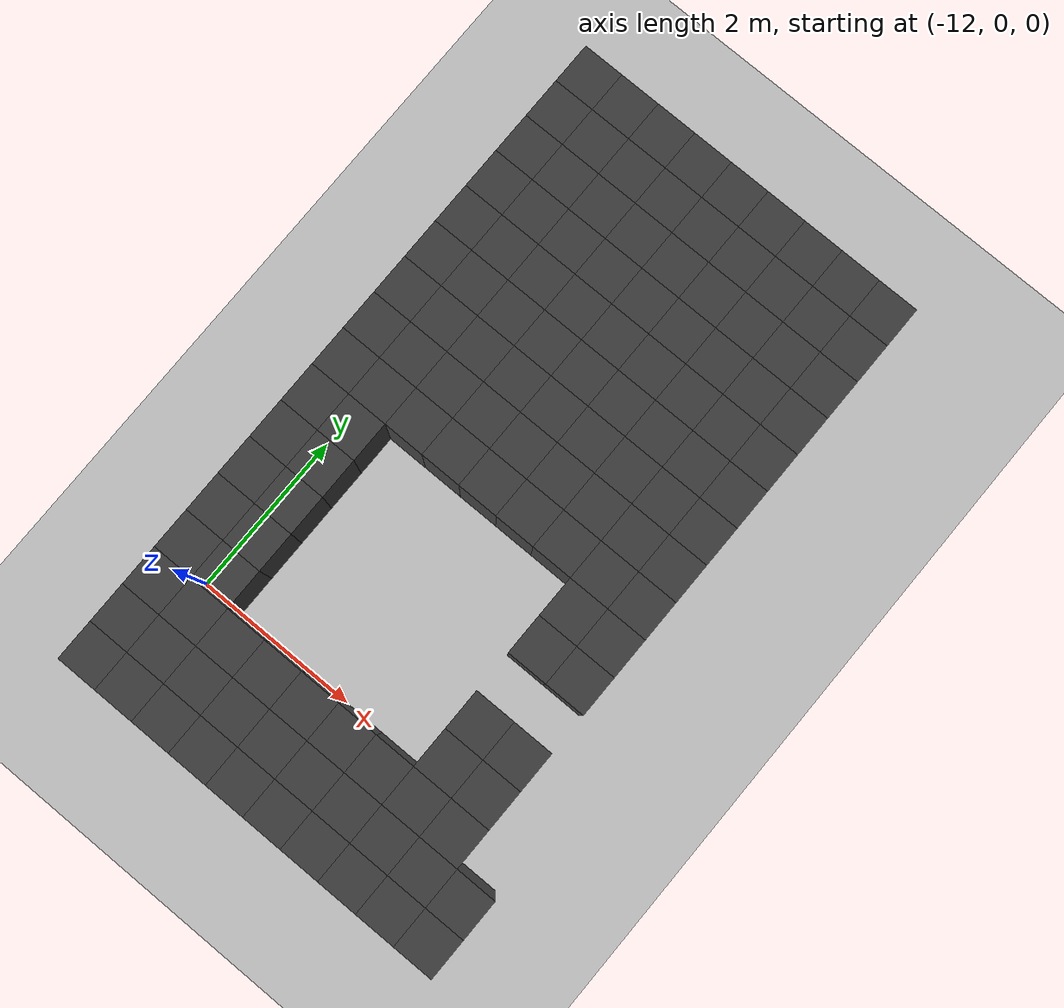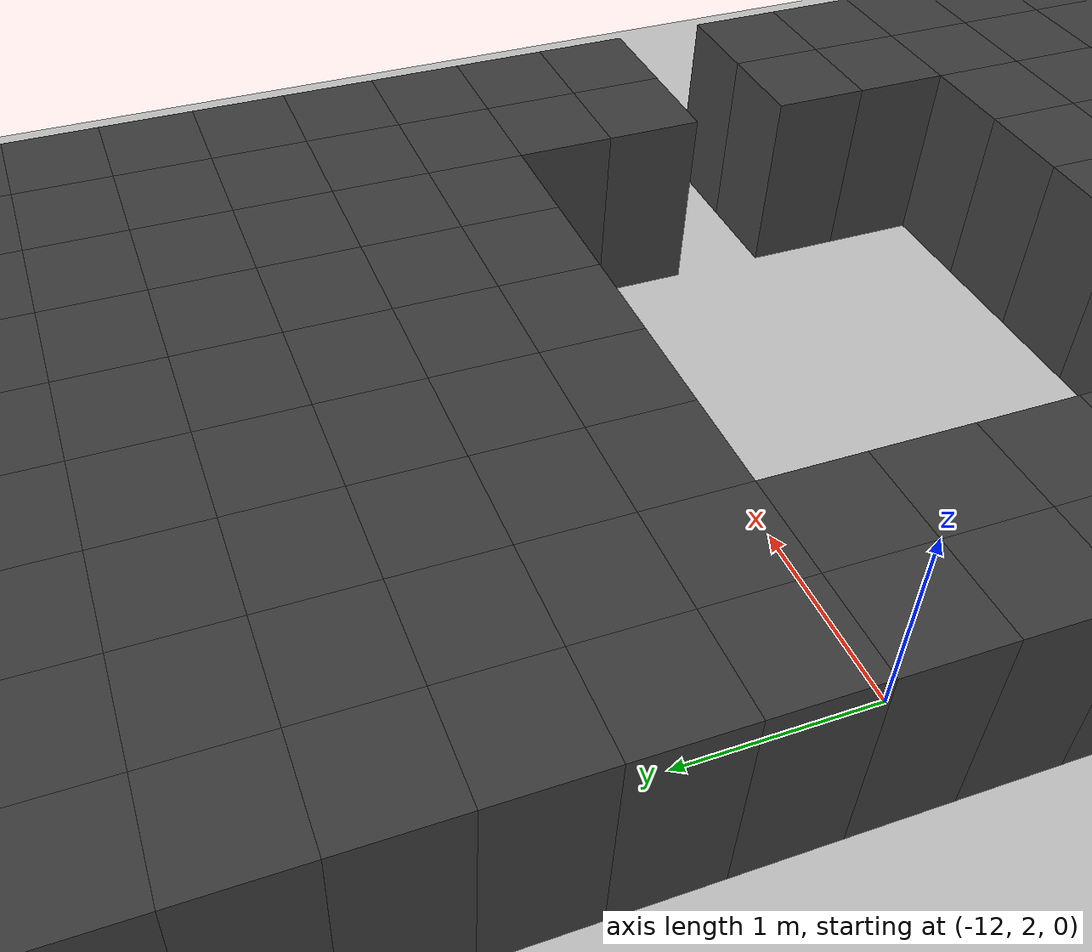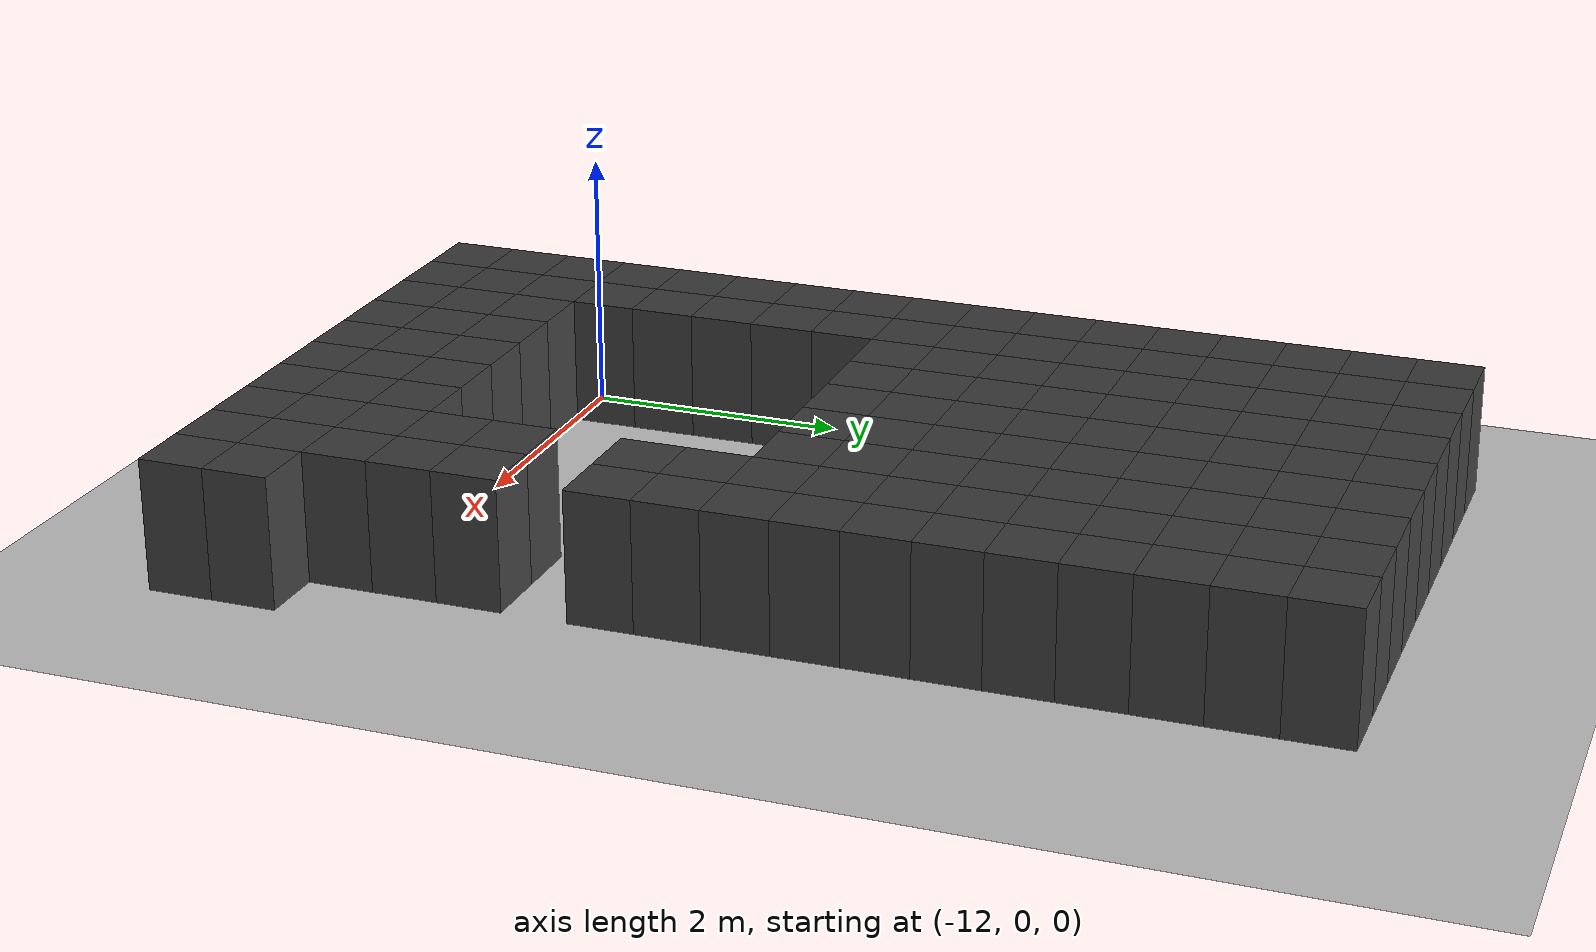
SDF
<sdf version="1.7">
 <world name="map_14980">
  <model name="ground_plane">
   <static>true</static>
   <link name="link">
    <collision name="collision">
     <geometry><plane><normal>0 0 1</normal><size>200 200</size></plane></geometry>
    </collision>
    <visual name="visual">
     <geometry><plane><normal>0 0 1</normal><size>200 200</size></plane></geometry>
     <material><ambient>0.8 0.8 0.8 1</ambient><diffuse>0.8 0.8 0.8 1</diffuse></material>
    </visual>
   </link>
  </model>
  <model name="maze_environment">
   <static>true</static>
   <link name="wall_420">
    <pose>-12.250 6.750 0.500 0 0 0</pose>
    <collision name="col"><geometry><box><size>0.5 0.5 1.0</size></box></geometry></collision>
    <visual name="vis">
     <geometry><box><size>0.5 0.5 1.0</size></box></geometry>
     <material><ambient>0.15 0.15 0.15 1</ambient><diffuse>0.25 0.25 0.25 1</diffuse></material>
    </visual>
   </link>
   <link name="wall_421">
    <pose>-11.750 6.750 0.500 0 0 0</pose>
    <collision name="col"><geometry><box><size>0.5 0.5 1.0</size></box></geometry></collision>
    <visual name="vis">
     <geometry><box><size>0.5 0.5 1.0</size></box></geometry>
     <material><ambient>0.15 0.15 0.15 1</ambient><diffuse>0.25 0.25 0.25 1</diffuse></material>
    </visual>
   </link>
   <link name="wall_422">
    <pose>-11.250 6.750 0.500 0 0 0</pose>
    <collision name="col"><geometry><box><size>0.5 0.5 1.0</size></box></geometry></collision>
    <visual name="vis">
     <geometry><box><size>0.5 0.5 1.0</size></box></geometry>
     <material><ambient>0.15 0.15 0.15 1</ambient><diffuse>0.25 0.25 0.25 1</diffuse></material>
    </visual>
   </link>
   <link name="wall_423">
    <pose>-10.750 6.750 0.500 0 0 0</pose>
    <collision name="col"><geometry><box><size>0.5 0.5 1.0</size></box></geometry></collision>
    <visual name="vis">
     <geometry><box><size>0.5 0.5 1.0</size></box></geometry>
     <material><ambient>0.15 0.15 0.15 1</ambient><diffuse>0.25 0.25 0.25 1</diffuse></material>
    </visual>
   </link>
   <link name="wall_424">
    <pose>-10.250 6.750 0.500 0 0 0</pose>
    <collision name="col"><geometry><box><size>0.5 0.5 1.0</size></box></geometry></collision>
    <visual name="vis">
     <geometry><box><size>0.5 0.5 1.0</size></box></geometry>
     <material><ambient>0.15 0.15 0.15 1</ambient><diffuse>0.25 0.25 0.25 1</diffuse></material>
    </visual>
   </link>
   <link name="wall_425">
    <pose>-9.750 6.750 0.500 0 0 0</pose>
    <collision name="col"><geometry><box><size>0.5 0.5 1.0</size></box></geometry></collision>
    <visual name="vis">
     <geometry><box><size>0.5 0.5 1.0</size></box></geometry>
     <material><ambient>0.15 0.15 0.15 1</ambient><diffuse>0.25 0.25 0.25 1</diffuse></material>
    </visual>
   </link>
   <link name="wall_426">
    <pose>-9.250 6.750 0.500 0 0 0</pose>
    <collision name="col"><geometry><box><size>0.5 0.5 1.0</size></box></geometry></collision>
    <visual name="vis">
     <geometry><box><size>0.5 0.5 1.0</size></box></geometry>
     <material><ambient>0.15 0.15 0.15 1</ambient><diffuse>0.25 0.25 0.25 1</diffuse></material>
    </visual>
   </link>
   <link name="wall_427">
    <pose>-8.750 6.750 0.500 0 0 0</pose>
    <collision name="col"><geometry><box><size>0.5 0.5 1.0</size></box></geometry></collision>
    <visual name="vis">
     <geometry><box><size>0.5 0.5 1.0</size></box></geometry>
     <material><ambient>0.15 0.15 0.15 1</ambient><diffuse>0.25 0.25 0.25 1</diffuse></material>
    </visual>
   </link>
   <link name="wall_428">
    <pose>-8.250 6.750 0.500 0 0 0</pose>
    <collision name="col"><geometry><box><size>0.5 0.5 1.0</size></box></geometry></collision>
    <visual name="vis">
     <geometry><box><size>0.5 0.5 1.0</size></box></geometry>
     <material><ambient>0.15 0.15 0.15 1</ambient><diffuse>0.25 0.25 0.25 1</diffuse></material>
    </visual>
   </link>
   <link name="wall_460">
    <pose>-12.250 6.250 0.500 0 0 0</pose>
    <collision name="col"><geometry><box><size>0.5 0.5 1.0</size></box></geometry></collision>
    <visual name="vis">
     <geometry><box><size>0.5 0.5 1.0</size></box></geometry>
     <material><ambient>0.15 0.15 0.15 1</ambient><diffuse>0.25 0.25 0.25 1</diffuse></material>
    </visual>
   </link>
   <link name="wall_461">
    <pose>-11.750 6.250 0.500 0 0 0</pose>
    <collision name="col"><geometry><box><size>0.5 0.5 1.0</size></box></geometry></collision>
    <visual name="vis">
     <geometry><box><size>0.5 0.5 1.0</size></box></geometry>
     <material><ambient>0.15 0.15 0.15 1</ambient><diffuse>0.25 0.25 0.25 1</diffuse></material>
    </visual>
   </link>
   <link name="wall_462">
    <pose>-11.250 6.250 0.500 0 0 0</pose>
    <collision name="col"><geometry><box><size>0.5 0.5 1.0</size></box></geometry></collision>
    <visual name="vis">
     <geometry><box><size>0.5 0.5 1.0</size></box></geometry>
     <material><ambient>0.15 0.15 0.15 1</ambient><diffuse>0.25 0.25 0.25 1</diffuse></material>
    </visual>
   </link>
   <link name="wall_463">
    <pose>-10.750 6.250 0.500 0 0 0</pose>
    <collision name="col"><geometry><box><size>0.5 0.5 1.0</size></box></geometry></collision>
    <visual name="vis">
     <geometry><box><size>0.5 0.5 1.0</size></box></geometry>
     <material><ambient>0.15 0.15 0.15 1</ambient><diffuse>0.25 0.25 0.25 1</diffuse></material>
    </visual>
   </link>
   <link name="wall_464">
    <pose>-10.250 6.250 0.500 0 0 0</pose>
    <collision name="col"><geometry><box><size>0.5 0.5 1.0</size></box></geometry></collision>
    <visual name="vis">
     <geometry><box><size>0.5 0.5 1.0</size></box></geometry>
     <material><ambient>0.15 0.15 0.15 1</ambient><diffuse>0.25 0.25 0.25 1</diffuse></material>
    </visual>
   </link>
   <link name="wall_465">
    <pose>-9.750 6.250 0.500 0 0 0</pose>
    <collision name="col"><geometry><box><size>0.5 0.5 1.0</size></box></geometry></collision>
    <visual name="vis">
     <geometry><box><size>0.5 0.5 1.0</size></box></geometry>
     <material><ambient>0.15 0.15 0.15 1</ambient><diffuse>0.25 0.25 0.25 1</diffuse></material>
    </visual>
   </link>
   <link name="wall_466">
    <pose>-9.250 6.250 0.500 0 0 0</pose>
    <collision name="col"><geometry><box><size>0.5 0.5 1.0</size></box></geometry></collision>
    <visual name="vis">
     <geometry><box><size>0.5 0.5 1.0</size></box></geometry>
     <material><ambient>0.15 0.15 0.15 1</ambient><diffuse>0.25 0.25 0.25 1</diffuse></material>
    </visual>
   </link>
   <link name="wall_467">
    <pose>-8.750 6.250 0.500 0 0 0</pose>
    <collision name="col"><geometry><box><size>0.5 0.5 1.0</size></box></geometry></collision>
    <visual name="vis">
     <geometry><box><size>0.5 0.5 1.0</size></box></geometry>
     <material><ambient>0.15 0.15 0.15 1</ambient><diffuse>0.25 0.25 0.25 1</diffuse></material>
    </visual>
   </link>
   <link name="wall_468">
    <pose>-8.250 6.250 0.500 0 0 0</pose>
    <collision name="col"><geometry><box><size>0.5 0.5 1.0</size></box></geometry></collision>
    <visual name="vis">
     <geometry><box><size>0.5 0.5 1.0</size></box></geometry>
     <material><ambient>0.15 0.15 0.15 1</ambient><diffuse>0.25 0.25 0.25 1</diffuse></material>
    </visual>
   </link>
   <link name="wall_497">
    <pose>-12.250 5.750 0.500 0 0 0</pose>
    <collision name="col"><geometry><box><size>0.5 0.5 1.0</size></box></geometry></collision>
    <visual name="vis">
     <geometry><box><size>0.5 0.5 1.0</size></box></geometry>
     <material><ambient>0.15 0.15 0.15 1</ambient><diffuse>0.25 0.25 0.25 1</diffuse></material>
    </visual>
   </link>
   <link name="wall_498">
    <pose>-11.750 5.750 0.500 0 0 0</pose>
    <collision name="col"><geometry><box><size>0.5 0.5 1.0</size></box></geometry></collision>
    <visual name="vis">
     <geometry><box><size>0.5 0.5 1.0</size></box></geometry>
     <material><ambient>0.15 0.15 0.15 1</ambient><diffuse>0.25 0.25 0.25 1</diffuse></material>
    </visual>
   </link>
   <link name="wall_499">
    <pose>-11.250 5.750 0.500 0 0 0</pose>
    <collision name="col"><geometry><box><size>0.5 0.5 1.0</size></box></geometry></collision>
    <visual name="vis">
     <geometry><box><size>0.5 0.5 1.0</size></box></geometry>
     <material><ambient>0.15 0.15 0.15 1</ambient><diffuse>0.25 0.25 0.25 1</diffuse></material>
    </visual>
   </link>
   <link name="wall_500">
    <pose>-10.750 5.750 0.500 0 0 0</pose>
    <collision name="col"><geometry><box><size>0.5 0.5 1.0</size></box></geometry></collision>
    <visual name="vis">
     <geometry><box><size>0.5 0.5 1.0</size></box></geometry>
     <material><ambient>0.15 0.15 0.15 1</ambient><diffuse>0.25 0.25 0.25 1</diffuse></material>
    </visual>
   </link>
   <link name="wall_501">
    <pose>-10.250 5.750 0.500 0 0 0</pose>
    <collision name="col"><geometry><box><size>0.5 0.5 1.0</size></box></geometry></collision>
    <visual name="vis">
     <geometry><box><size>0.5 0.5 1.0</size></box></geometry>
     <material><ambient>0.15 0.15 0.15 1</ambient><diffuse>0.25 0.25 0.25 1</diffuse></material>
    </visual>
   </link>
   <link name="wall_502">
    <pose>-9.750 5.750 0.500 0 0 0</pose>
    <collision name="col"><geometry><box><size>0.5 0.5 1.0</size></box></geometry></collision>
    <visual name="vis">
     <geometry><box><size>0.5 0.5 1.0</size></box></geometry>
     <material><ambient>0.15 0.15 0.15 1</ambient><diffuse>0.25 0.25 0.25 1</diffuse></material>
    </visual>
   </link>
   <link name="wall_503">
    <pose>-9.250 5.750 0.500 0 0 0</pose>
    <collision name="col"><geometry><box><size>0.5 0.5 1.0</size></box></geometry></collision>
    <visual name="vis">
     <geometry><box><size>0.5 0.5 1.0</size></box></geometry>
     <material><ambient>0.15 0.15 0.15 1</ambient><diffuse>0.25 0.25 0.25 1</diffuse></material>
    </visual>
   </link>
   <link name="wall_504">
    <pose>-8.750 5.750 0.500 0 0 0</pose>
    <collision name="col"><geometry><box><size>0.5 0.5 1.0</size></box></geometry></collision>
    <visual name="vis">
     <geometry><box><size>0.5 0.5 1.0</size></box></geometry>
     <material><ambient>0.15 0.15 0.15 1</ambient><diffuse>0.25 0.25 0.25 1</diffuse></material>
    </visual>
   </link>
   <link name="wall_505">
    <pose>-8.250 5.750 0.500 0 0 0</pose>
    <collision name="col"><geometry><box><size>0.5 0.5 1.0</size></box></geometry></collision>
    <visual name="vis">
     <geometry><box><size>0.5 0.5 1.0</size></box></geometry>
     <material><ambient>0.15 0.15 0.15 1</ambient><diffuse>0.25 0.25 0.25 1</diffuse></material>
    </visual>
   </link>
   <link name="wall_530">
    <pose>-12.250 5.250 0.500 0 0 0</pose>
    <collision name="col"><geometry><box><size>0.5 0.5 1.0</size></box></geometry></collision>
    <visual name="vis">
     <geometry><box><size>0.5 0.5 1.0</size></box></geometry>
     <material><ambient>0.15 0.15 0.15 1</ambient><diffuse>0.25 0.25 0.25 1</diffuse></material>
    </visual>
   </link>
   <link name="wall_531">
    <pose>-11.750 5.250 0.500 0 0 0</pose>
    <collision name="col"><geometry><box><size>0.5 0.5 1.0</size></box></geometry></collision>
    <visual name="vis">
     <geometry><box><size>0.5 0.5 1.0</size></box></geometry>
     <material><ambient>0.15 0.15 0.15 1</ambient><diffuse>0.25 0.25 0.25 1</diffuse></material>
    </visual>
   </link>
   <link name="wall_532">
    <pose>-11.250 5.250 0.500 0 0 0</pose>
    <collision name="col"><geometry><box><size>0.5 0.5 1.0</size></box></geometry></collision>
    <visual name="vis">
     <geometry><box><size>0.5 0.5 1.0</size></box></geometry>
     <material><ambient>0.15 0.15 0.15 1</ambient><diffuse>0.25 0.25 0.25 1</diffuse></material>
    </visual>
   </link>
   <link name="wall_533">
    <pose>-10.750 5.250 0.500 0 0 0</pose>
    <collision name="col"><geometry><box><size>0.5 0.5 1.0</size></box></geometry></collision>
    <visual name="vis">
     <geometry><box><size>0.5 0.5 1.0</size></box></geometry>
     <material><ambient>0.15 0.15 0.15 1</ambient><diffuse>0.25 0.25 0.25 1</diffuse></material>
    </visual>
   </link>
   <link name="wall_534">
    <pose>-10.250 5.250 0.500 0 0 0</pose>
    <collision name="col"><geometry><box><size>0.5 0.5 1.0</size></box></geometry></collision>
    <visual name="vis">
     <geometry><box><size>0.5 0.5 1.0</size></box></geometry>
     <material><ambient>0.15 0.15 0.15 1</ambient><diffuse>0.25 0.25 0.25 1</diffuse></material>
    </visual>
   </link>
   <link name="wall_535">
    <pose>-9.750 5.250 0.500 0 0 0</pose>
    <collision name="col"><geometry><box><size>0.5 0.5 1.0</size></box></geometry></collision>
    <visual name="vis">
     <geometry><box><size>0.5 0.5 1.0</size></box></geometry>
     <material><ambient>0.15 0.15 0.15 1</ambient><diffuse>0.25 0.25 0.25 1</diffuse></material>
    </visual>
   </link>
   <link name="wall_536">
    <pose>-9.250 5.250 0.500 0 0 0</pose>
    <collision name="col"><geometry><box><size>0.5 0.5 1.0</size></box></geometry></collision>
    <visual name="vis">
     <geometry><box><size>0.5 0.5 1.0</size></box></geometry>
     <material><ambient>0.15 0.15 0.15 1</ambient><diffuse>0.25 0.25 0.25 1</diffuse></material>
    </visual>
   </link>
   <link name="wall_537">
    <pose>-8.750 5.250 0.500 0 0 0</pose>
    <collision name="col"><geometry><box><size>0.5 0.5 1.0</size></box></geometry></collision>
    <visual name="vis">
     <geometry><box><size>0.5 0.5 1.0</size></box></geometry>
     <material><ambient>0.15 0.15 0.15 1</ambient><diffuse>0.25 0.25 0.25 1</diffuse></material>
    </visual>
   </link>
   <link name="wall_538">
    <pose>-8.250 5.250 0.500 0 0 0</pose>
    <collision name="col"><geometry><box><size>0.5 0.5 1.0</size></box></geometry></collision>
    <visual name="vis">
     <geometry><box><size>0.5 0.5 1.0</size></box></geometry>
     <material><ambient>0.15 0.15 0.15 1</ambient><diffuse>0.25 0.25 0.25 1</diffuse></material>
    </visual>
   </link>
   <link name="wall_557">
    <pose>-12.250 4.750 0.500 0 0 0</pose>
    <collision name="col"><geometry><box><size>0.5 0.5 1.0</size></box></geometry></collision>
    <visual name="vis">
     <geometry><box><size>0.5 0.5 1.0</size></box></geometry>
     <material><ambient>0.15 0.15 0.15 1</ambient><diffuse>0.25 0.25 0.25 1</diffuse></material>
    </visual>
   </link>
   <link name="wall_558">
    <pose>-11.750 4.750 0.500 0 0 0</pose>
    <collision name="col"><geometry><box><size>0.5 0.5 1.0</size></box></geometry></collision>
    <visual name="vis">
     <geometry><box><size>0.5 0.5 1.0</size></box></geometry>
     <material><ambient>0.15 0.15 0.15 1</ambient><diffuse>0.25 0.25 0.25 1</diffuse></material>
    </visual>
   </link>
   <link name="wall_559">
    <pose>-11.250 4.750 0.500 0 0 0</pose>
    <collision name="col"><geometry><box><size>0.5 0.5 1.0</size></box></geometry></collision>
    <visual name="vis">
     <geometry><box><size>0.5 0.5 1.0</size></box></geometry>
     <material><ambient>0.15 0.15 0.15 1</ambient><diffuse>0.25 0.25 0.25 1</diffuse></material>
    </visual>
   </link>
   <link name="wall_560">
    <pose>-10.750 4.750 0.500 0 0 0</pose>
    <collision name="col"><geometry><box><size>0.5 0.5 1.0</size></box></geometry></collision>
    <visual name="vis">
     <geometry><box><size>0.5 0.5 1.0</size></box></geometry>
     <material><ambient>0.15 0.15 0.15 1</ambient><diffuse>0.25 0.25 0.25 1</diffuse></material>
    </visual>
   </link>
   <link name="wall_561">
    <pose>-10.250 4.750 0.500 0 0 0</pose>
    <collision name="col"><geometry><box><size>0.5 0.5 1.0</size></box></geometry></collision>
    <visual name="vis">
     <geometry><box><size>0.5 0.5 1.0</size></box></geometry>
     <material><ambient>0.15 0.15 0.15 1</ambient><diffuse>0.25 0.25 0.25 1</diffuse></material>
    </visual>
   </link>
   <link name="wall_562">
    <pose>-9.750 4.750 0.500 0 0 0</pose>
    <collision name="col"><geometry><box><size>0.5 0.5 1.0</size></box></geometry></collision>
    <visual name="vis">
     <geometry><box><size>0.5 0.5 1.0</size></box></geometry>
     <material><ambient>0.15 0.15 0.15 1</ambient><diffuse>0.25 0.25 0.25 1</diffuse></material>
    </visual>
   </link>
   <link name="wall_563">
    <pose>-9.250 4.750 0.500 0 0 0</pose>
    <collision name="col"><geometry><box><size>0.5 0.5 1.0</size></box></geometry></collision>
    <visual name="vis">
     <geometry><box><size>0.5 0.5 1.0</size></box></geometry>
     <material><ambient>0.15 0.15 0.15 1</ambient><diffuse>0.25 0.25 0.25 1</diffuse></material>
    </visual>
   </link>
   <link name="wall_564">
    <pose>-8.750 4.750 0.500 0 0 0</pose>
    <collision name="col"><geometry><box><size>0.5 0.5 1.0</size></box></geometry></collision>
    <visual name="vis">
     <geometry><box><size>0.5 0.5 1.0</size></box></geometry>
     <material><ambient>0.15 0.15 0.15 1</ambient><diffuse>0.25 0.25 0.25 1</diffuse></material>
    </visual>
   </link>
   <link name="wall_565">
    <pose>-8.250 4.750 0.500 0 0 0</pose>
    <collision name="col"><geometry><box><size>0.5 0.5 1.0</size></box></geometry></collision>
    <visual name="vis">
     <geometry><box><size>0.5 0.5 1.0</size></box></geometry>
     <material><ambient>0.15 0.15 0.15 1</ambient><diffuse>0.25 0.25 0.25 1</diffuse></material>
    </visual>
   </link>
   <link name="wall_584">
    <pose>-12.250 4.250 0.500 0 0 0</pose>
    <collision name="col"><geometry><box><size>0.5 0.5 1.0</size></box></geometry></collision>
    <visual name="vis">
     <geometry><box><size>0.5 0.5 1.0</size></box></geometry>
     <material><ambient>0.15 0.15 0.15 1</ambient><diffuse>0.25 0.25 0.25 1</diffuse></material>
    </visual>
   </link>
   <link name="wall_585">
    <pose>-11.750 4.250 0.500 0 0 0</pose>
    <collision name="col"><geometry><box><size>0.5 0.5 1.0</size></box></geometry></collision>
    <visual name="vis">
     <geometry><box><size>0.5 0.5 1.0</size></box></geometry>
     <material><ambient>0.15 0.15 0.15 1</ambient><diffuse>0.25 0.25 0.25 1</diffuse></material>
    </visual>
   </link>
   <link name="wall_586">
    <pose>-11.250 4.250 0.500 0 0 0</pose>
    <collision name="col"><geometry><box><size>0.5 0.5 1.0</size></box></geometry></collision>
    <visual name="vis">
     <geometry><box><size>0.5 0.5 1.0</size></box></geometry>
     <material><ambient>0.15 0.15 0.15 1</ambient><diffuse>0.25 0.25 0.25 1</diffuse></material>
    </visual>
   </link>
   <link name="wall_587">
    <pose>-10.750 4.250 0.500 0 0 0</pose>
    <collision name="col"><geometry><box><size>0.5 0.5 1.0</size></box></geometry></collision>
    <visual name="vis">
     <geometry><box><size>0.5 0.5 1.0</size></box></geometry>
     <material><ambient>0.15 0.15 0.15 1</ambient><diffuse>0.25 0.25 0.25 1</diffuse></material>
    </visual>
   </link>
   <link name="wall_588">
    <pose>-10.250 4.250 0.500 0 0 0</pose>
    <collision name="col"><geometry><box><size>0.5 0.5 1.0</size></box></geometry></collision>
    <visual name="vis">
     <geometry><box><size>0.5 0.5 1.0</size></box></geometry>
     <material><ambient>0.15 0.15 0.15 1</ambient><diffuse>0.25 0.25 0.25 1</diffuse></material>
    </visual>
   </link>
   <link name="wall_589">
    <pose>-9.750 4.250 0.500 0 0 0</pose>
    <collision name="col"><geometry><box><size>0.5 0.5 1.0</size></box></geometry></collision>
    <visual name="vis">
     <geometry><box><size>0.5 0.5 1.0</size></box></geometry>
     <material><ambient>0.15 0.15 0.15 1</ambient><diffuse>0.25 0.25 0.25 1</diffuse></material>
    </visual>
   </link>
   <link name="wall_590">
    <pose>-9.250 4.250 0.500 0 0 0</pose>
    <collision name="col"><geometry><box><size>0.5 0.5 1.0</size></box></geometry></collision>
    <visual name="vis">
     <geometry><box><size>0.5 0.5 1.0</size></box></geometry>
     <material><ambient>0.15 0.15 0.15 1</ambient><diffuse>0.25 0.25 0.25 1</diffuse></material>
    </visual>
   </link>
   <link name="wall_591">
    <pose>-8.750 4.250 0.500 0 0 0</pose>
    <collision name="col"><geometry><box><size>0.5 0.5 1.0</size></box></geometry></collision>
    <visual name="vis">
     <geometry><box><size>0.5 0.5 1.0</size></box></geometry>
     <material><ambient>0.15 0.15 0.15 1</ambient><diffuse>0.25 0.25 0.25 1</diffuse></material>
    </visual>
   </link>
   <link name="wall_592">
    <pose>-8.250 4.250 0.500 0 0 0</pose>
    <collision name="col"><geometry><box><size>0.5 0.5 1.0</size></box></geometry></collision>
    <visual name="vis">
     <geometry><box><size>0.5 0.5 1.0</size></box></geometry>
     <material><ambient>0.15 0.15 0.15 1</ambient><diffuse>0.25 0.25 0.25 1</diffuse></material>
    </visual>
   </link>
   <link name="wall_606">
    <pose>-12.250 3.750 0.500 0 0 0</pose>
    <collision name="col"><geometry><box><size>0.5 0.5 1.0</size></box></geometry></collision>
    <visual name="vis">
     <geometry><box><size>0.5 0.5 1.0</size></box></geometry>
     <material><ambient>0.15 0.15 0.15 1</ambient><diffuse>0.25 0.25 0.25 1</diffuse></material>
    </visual>
   </link>
   <link name="wall_607">
    <pose>-11.750 3.750 0.500 0 0 0</pose>
    <collision name="col"><geometry><box><size>0.5 0.5 1.0</size></box></geometry></collision>
    <visual name="vis">
     <geometry><box><size>0.5 0.5 1.0</size></box></geometry>
     <material><ambient>0.15 0.15 0.15 1</ambient><diffuse>0.25 0.25 0.25 1</diffuse></material>
    </visual>
   </link>
   <link name="wall_608">
    <pose>-11.250 3.750 0.500 0 0 0</pose>
    <collision name="col"><geometry><box><size>0.5 0.5 1.0</size></box></geometry></collision>
    <visual name="vis">
     <geometry><box><size>0.5 0.5 1.0</size></box></geometry>
     <material><ambient>0.15 0.15 0.15 1</ambient><diffuse>0.25 0.25 0.25 1</diffuse></material>
    </visual>
   </link>
   <link name="wall_609">
    <pose>-10.750 3.750 0.500 0 0 0</pose>
    <collision name="col"><geometry><box><size>0.5 0.5 1.0</size></box></geometry></collision>
    <visual name="vis">
     <geometry><box><size>0.5 0.5 1.0</size></box></geometry>
     <material><ambient>0.15 0.15 0.15 1</ambient><diffuse>0.25 0.25 0.25 1</diffuse></material>
    </visual>
   </link>
   <link name="wall_610">
    <pose>-10.250 3.750 0.500 0 0 0</pose>
    <collision name="col"><geometry><box><size>0.5 0.5 1.0</size></box></geometry></collision>
    <visual name="vis">
     <geometry><box><size>0.5 0.5 1.0</size></box></geometry>
     <material><ambient>0.15 0.15 0.15 1</ambient><diffuse>0.25 0.25 0.25 1</diffuse></material>
    </visual>
   </link>
   <link name="wall_611">
    <pose>-9.750 3.750 0.500 0 0 0</pose>
    <collision name="col"><geometry><box><size>0.5 0.5 1.0</size></box></geometry></collision>
    <visual name="vis">
     <geometry><box><size>0.5 0.5 1.0</size></box></geometry>
     <material><ambient>0.15 0.15 0.15 1</ambient><diffuse>0.25 0.25 0.25 1</diffuse></material>
    </visual>
   </link>
   <link name="wall_612">
    <pose>-9.250 3.750 0.500 0 0 0</pose>
    <collision name="col"><geometry><box><size>0.5 0.5 1.0</size></box></geometry></collision>
    <visual name="vis">
     <geometry><box><size>0.5 0.5 1.0</size></box></geometry>
     <material><ambient>0.15 0.15 0.15 1</ambient><diffuse>0.25 0.25 0.25 1</diffuse></material>
    </visual>
   </link>
   <link name="wall_613">
    <pose>-8.750 3.750 0.500 0 0 0</pose>
    <collision name="col"><geometry><box><size>0.5 0.5 1.0</size></box></geometry></collision>
    <visual name="vis">
     <geometry><box><size>0.5 0.5 1.0</size></box></geometry>
     <material><ambient>0.15 0.15 0.15 1</ambient><diffuse>0.25 0.25 0.25 1</diffuse></material>
    </visual>
   </link>
   <link name="wall_614">
    <pose>-8.250 3.750 0.500 0 0 0</pose>
    <collision name="col"><geometry><box><size>0.5 0.5 1.0</size></box></geometry></collision>
    <visual name="vis">
     <geometry><box><size>0.5 0.5 1.0</size></box></geometry>
     <material><ambient>0.15 0.15 0.15 1</ambient><diffuse>0.25 0.25 0.25 1</diffuse></material>
    </visual>
   </link>
   <link name="wall_632">
    <pose>-12.250 3.250 0.500 0 0 0</pose>
    <collision name="col"><geometry><box><size>0.5 0.5 1.0</size></box></geometry></collision>
    <visual name="vis">
     <geometry><box><size>0.5 0.5 1.0</size></box></geometry>
     <material><ambient>0.15 0.15 0.15 1</ambient><diffuse>0.25 0.25 0.25 1</diffuse></material>
    </visual>
   </link>
   <link name="wall_633">
    <pose>-11.750 3.250 0.500 0 0 0</pose>
    <collision name="col"><geometry><box><size>0.5 0.5 1.0</size></box></geometry></collision>
    <visual name="vis">
     <geometry><box><size>0.5 0.5 1.0</size></box></geometry>
     <material><ambient>0.15 0.15 0.15 1</ambient><diffuse>0.25 0.25 0.25 1</diffuse></material>
    </visual>
   </link>
   <link name="wall_634">
    <pose>-11.250 3.250 0.500 0 0 0</pose>
    <collision name="col"><geometry><box><size>0.5 0.5 1.0</size></box></geometry></collision>
    <visual name="vis">
     <geometry><box><size>0.5 0.5 1.0</size></box></geometry>
     <material><ambient>0.15 0.15 0.15 1</ambient><diffuse>0.25 0.25 0.25 1</diffuse></material>
    </visual>
   </link>
   <link name="wall_635">
    <pose>-10.750 3.250 0.500 0 0 0</pose>
    <collision name="col"><geometry><box><size>0.5 0.5 1.0</size></box></geometry></collision>
    <visual name="vis">
     <geometry><box><size>0.5 0.5 1.0</size></box></geometry>
     <material><ambient>0.15 0.15 0.15 1</ambient><diffuse>0.25 0.25 0.25 1</diffuse></material>
    </visual>
   </link>
   <link name="wall_636">
    <pose>-10.250 3.250 0.500 0 0 0</pose>
    <collision name="col"><geometry><box><size>0.5 0.5 1.0</size></box></geometry></collision>
    <visual name="vis">
     <geometry><box><size>0.5 0.5 1.0</size></box></geometry>
     <material><ambient>0.15 0.15 0.15 1</ambient><diffuse>0.25 0.25 0.25 1</diffuse></material>
    </visual>
   </link>
   <link name="wall_637">
    <pose>-9.750 3.250 0.500 0 0 0</pose>
    <collision name="col"><geometry><box><size>0.5 0.5 1.0</size></box></geometry></collision>
    <visual name="vis">
     <geometry><box><size>0.5 0.5 1.0</size></box></geometry>
     <material><ambient>0.15 0.15 0.15 1</ambient><diffuse>0.25 0.25 0.25 1</diffuse></material>
    </visual>
   </link>
   <link name="wall_638">
    <pose>-9.250 3.250 0.500 0 0 0</pose>
    <collision name="col"><geometry><box><size>0.5 0.5 1.0</size></box></geometry></collision>
    <visual name="vis">
     <geometry><box><size>0.5 0.5 1.0</size></box></geometry>
     <material><ambient>0.15 0.15 0.15 1</ambient><diffuse>0.25 0.25 0.25 1</diffuse></material>
    </visual>
   </link>
   <link name="wall_639">
    <pose>-8.750 3.250 0.500 0 0 0</pose>
    <collision name="col"><geometry><box><size>0.5 0.5 1.0</size></box></geometry></collision>
    <visual name="vis">
     <geometry><box><size>0.5 0.5 1.0</size></box></geometry>
     <material><ambient>0.15 0.15 0.15 1</ambient><diffuse>0.25 0.25 0.25 1</diffuse></material>
    </visual>
   </link>
   <link name="wall_640">
    <pose>-8.250 3.250 0.500 0 0 0</pose>
    <collision name="col"><geometry><box><size>0.5 0.5 1.0</size></box></geometry></collision>
    <visual name="vis">
     <geometry><box><size>0.5 0.5 1.0</size></box></geometry>
     <material><ambient>0.15 0.15 0.15 1</ambient><diffuse>0.25 0.25 0.25 1</diffuse></material>
    </visual>
   </link>
   <link name="wall_667">
    <pose>-12.250 2.750 0.500 0 0 0</pose>
    <collision name="col"><geometry><box><size>0.5 0.5 1.0</size></box></geometry></collision>
    <visual name="vis">
     <geometry><box><size>0.5 0.5 1.0</size></box></geometry>
     <material><ambient>0.15 0.15 0.15 1</ambient><diffuse>0.25 0.25 0.25 1</diffuse></material>
    </visual>
   </link>
   <link name="wall_668">
    <pose>-11.750 2.750 0.500 0 0 0</pose>
    <collision name="col"><geometry><box><size>0.5 0.5 1.0</size></box></geometry></collision>
    <visual name="vis">
     <geometry><box><size>0.5 0.5 1.0</size></box></geometry>
     <material><ambient>0.15 0.15 0.15 1</ambient><diffuse>0.25 0.25 0.25 1</diffuse></material>
    </visual>
   </link>
   <link name="wall_669">
    <pose>-11.250 2.750 0.500 0 0 0</pose>
    <collision name="col"><geometry><box><size>0.5 0.5 1.0</size></box></geometry></collision>
    <visual name="vis">
     <geometry><box><size>0.5 0.5 1.0</size></box></geometry>
     <material><ambient>0.15 0.15 0.15 1</ambient><diffuse>0.25 0.25 0.25 1</diffuse></material>
    </visual>
   </link>
   <link name="wall_670">
    <pose>-10.750 2.750 0.500 0 0 0</pose>
    <collision name="col"><geometry><box><size>0.5 0.5 1.0</size></box></geometry></collision>
    <visual name="vis">
     <geometry><box><size>0.5 0.5 1.0</size></box></geometry>
     <material><ambient>0.15 0.15 0.15 1</ambient><diffuse>0.25 0.25 0.25 1</diffuse></material>
    </visual>
   </link>
   <link name="wall_671">
    <pose>-10.250 2.750 0.500 0 0 0</pose>
    <collision name="col"><geometry><box><size>0.5 0.5 1.0</size></box></geometry></collision>
    <visual name="vis">
     <geometry><box><size>0.5 0.5 1.0</size></box></geometry>
     <material><ambient>0.15 0.15 0.15 1</ambient><diffuse>0.25 0.25 0.25 1</diffuse></material>
    </visual>
   </link>
   <link name="wall_672">
    <pose>-9.750 2.750 0.500 0 0 0</pose>
    <collision name="col"><geometry><box><size>0.5 0.5 1.0</size></box></geometry></collision>
    <visual name="vis">
     <geometry><box><size>0.5 0.5 1.0</size></box></geometry>
     <material><ambient>0.15 0.15 0.15 1</ambient><diffuse>0.25 0.25 0.25 1</diffuse></material>
    </visual>
   </link>
   <link name="wall_673">
    <pose>-9.250 2.750 0.500 0 0 0</pose>
    <collision name="col"><geometry><box><size>0.5 0.5 1.0</size></box></geometry></collision>
    <visual name="vis">
     <geometry><box><size>0.5 0.5 1.0</size></box></geometry>
     <material><ambient>0.15 0.15 0.15 1</ambient><diffuse>0.25 0.25 0.25 1</diffuse></material>
    </visual>
   </link>
   <link name="wall_674">
    <pose>-8.750 2.750 0.500 0 0 0</pose>
    <collision name="col"><geometry><box><size>0.5 0.5 1.0</size></box></geometry></collision>
    <visual name="vis">
     <geometry><box><size>0.5 0.5 1.0</size></box></geometry>
     <material><ambient>0.15 0.15 0.15 1</ambient><diffuse>0.25 0.25 0.25 1</diffuse></material>
    </visual>
   </link>
   <link name="wall_675">
    <pose>-8.250 2.750 0.500 0 0 0</pose>
    <collision name="col"><geometry><box><size>0.5 0.5 1.0</size></box></geometry></collision>
    <visual name="vis">
     <geometry><box><size>0.5 0.5 1.0</size></box></geometry>
     <material><ambient>0.15 0.15 0.15 1</ambient><diffuse>0.25 0.25 0.25 1</diffuse></material>
    </visual>
   </link>
   <link name="wall_704">
    <pose>-12.250 2.250 0.500 0 0 0</pose>
    <collision name="col"><geometry><box><size>0.5 0.5 1.0</size></box></geometry></collision>
    <visual name="vis">
     <geometry><box><size>0.5 0.5 1.0</size></box></geometry>
     <material><ambient>0.15 0.15 0.15 1</ambient><diffuse>0.25 0.25 0.25 1</diffuse></material>
    </visual>
   </link>
   <link name="wall_705">
    <pose>-11.750 2.250 0.500 0 0 0</pose>
    <collision name="col"><geometry><box><size>0.5 0.5 1.0</size></box></geometry></collision>
    <visual name="vis">
     <geometry><box><size>0.5 0.5 1.0</size></box></geometry>
     <material><ambient>0.15 0.15 0.15 1</ambient><diffuse>0.25 0.25 0.25 1</diffuse></material>
    </visual>
   </link>
   <link name="wall_706">
    <pose>-8.750 2.250 0.500 0 0 0</pose>
    <collision name="col"><geometry><box><size>0.5 0.5 1.0</size></box></geometry></collision>
    <visual name="vis">
     <geometry><box><size>0.5 0.5 1.0</size></box></geometry>
     <material><ambient>0.15 0.15 0.15 1</ambient><diffuse>0.25 0.25 0.25 1</diffuse></material>
    </visual>
   </link>
   <link name="wall_707">
    <pose>-8.250 2.250 0.500 0 0 0</pose>
    <collision name="col"><geometry><box><size>0.5 0.5 1.0</size></box></geometry></collision>
    <visual name="vis">
     <geometry><box><size>0.5 0.5 1.0</size></box></geometry>
     <material><ambient>0.15 0.15 0.15 1</ambient><diffuse>0.25 0.25 0.25 1</diffuse></material>
    </visual>
   </link>
   <link name="wall_743">
    <pose>-12.250 1.750 0.500 0 0 0</pose>
    <collision name="col"><geometry><box><size>0.5 0.5 1.0</size></box></geometry></collision>
    <visual name="vis">
     <geometry><box><size>0.5 0.5 1.0</size></box></geometry>
     <material><ambient>0.15 0.15 0.15 1</ambient><diffuse>0.25 0.25 0.25 1</diffuse></material>
    </visual>
   </link>
   <link name="wall_744">
    <pose>-11.750 1.750 0.500 0 0 0</pose>
    <collision name="col"><geometry><box><size>0.5 0.5 1.0</size></box></geometry></collision>
    <visual name="vis">
     <geometry><box><size>0.5 0.5 1.0</size></box></geometry>
     <material><ambient>0.15 0.15 0.15 1</ambient><diffuse>0.25 0.25 0.25 1</diffuse></material>
    </visual>
   </link>
   <link name="wall_745">
    <pose>-8.750 1.750 0.500 0 0 0</pose>
    <collision name="col"><geometry><box><size>0.5 0.5 1.0</size></box></geometry></collision>
    <visual name="vis">
     <geometry><box><size>0.5 0.5 1.0</size></box></geometry>
     <material><ambient>0.15 0.15 0.15 1</ambient><diffuse>0.25 0.25 0.25 1</diffuse></material>
    </visual>
   </link>
   <link name="wall_746">
    <pose>-8.250 1.750 0.500 0 0 0</pose>
    <collision name="col"><geometry><box><size>0.5 0.5 1.0</size></box></geometry></collision>
    <visual name="vis">
     <geometry><box><size>0.5 0.5 1.0</size></box></geometry>
     <material><ambient>0.15 0.15 0.15 1</ambient><diffuse>0.25 0.25 0.25 1</diffuse></material>
    </visual>
   </link>
   <link name="wall_777">
    <pose>-12.250 1.250 0.500 0 0 0</pose>
    <collision name="col"><geometry><box><size>0.5 0.5 1.0</size></box></geometry></collision>
    <visual name="vis">
     <geometry><box><size>0.5 0.5 1.0</size></box></geometry>
     <material><ambient>0.15 0.15 0.15 1</ambient><diffuse>0.25 0.25 0.25 1</diffuse></material>
    </visual>
   </link>
   <link name="wall_778">
    <pose>-11.750 1.250 0.500 0 0 0</pose>
    <collision name="col"><geometry><box><size>0.5 0.5 1.0</size></box></geometry></collision>
    <visual name="vis">
     <geometry><box><size>0.5 0.5 1.0</size></box></geometry>
     <material><ambient>0.15 0.15 0.15 1</ambient><diffuse>0.25 0.25 0.25 1</diffuse></material>
    </visual>
   </link>
   <link name="wall_809">
    <pose>-12.250 0.750 0.500 0 0 0</pose>
    <collision name="col"><geometry><box><size>0.5 0.5 1.0</size></box></geometry></collision>
    <visual name="vis">
     <geometry><box><size>0.5 0.5 1.0</size></box></geometry>
     <material><ambient>0.15 0.15 0.15 1</ambient><diffuse>0.25 0.25 0.25 1</diffuse></material>
    </visual>
   </link>
   <link name="wall_810">
    <pose>-11.750 0.750 0.500 0 0 0</pose>
    <collision name="col"><geometry><box><size>0.5 0.5 1.0</size></box></geometry></collision>
    <visual name="vis">
     <geometry><box><size>0.5 0.5 1.0</size></box></geometry>
     <material><ambient>0.15 0.15 0.15 1</ambient><diffuse>0.25 0.25 0.25 1</diffuse></material>
    </visual>
   </link>
   <link name="wall_811">
    <pose>-8.750 0.750 0.500 0 0 0</pose>
    <collision name="col"><geometry><box><size>0.5 0.5 1.0</size></box></geometry></collision>
    <visual name="vis">
     <geometry><box><size>0.5 0.5 1.0</size></box></geometry>
     <material><ambient>0.15 0.15 0.15 1</ambient><diffuse>0.25 0.25 0.25 1</diffuse></material>
    </visual>
   </link>
   <link name="wall_812">
    <pose>-8.250 0.750 0.500 0 0 0</pose>
    <collision name="col"><geometry><box><size>0.5 0.5 1.0</size></box></geometry></collision>
    <visual name="vis">
     <geometry><box><size>0.5 0.5 1.0</size></box></geometry>
     <material><ambient>0.15 0.15 0.15 1</ambient><diffuse>0.25 0.25 0.25 1</diffuse></material>
    </visual>
   </link>
   <link name="wall_836">
    <pose>-12.250 0.250 0.500 0 0 0</pose>
    <collision name="col"><geometry><box><size>0.5 0.5 1.0</size></box></geometry></collision>
    <visual name="vis">
     <geometry><box><size>0.5 0.5 1.0</size></box></geometry>
     <material><ambient>0.15 0.15 0.15 1</ambient><diffuse>0.25 0.25 0.25 1</diffuse></material>
    </visual>
   </link>
   <link name="wall_837">
    <pose>-11.750 0.250 0.500 0 0 0</pose>
    <collision name="col"><geometry><box><size>0.5 0.5 1.0</size></box></geometry></collision>
    <visual name="vis">
     <geometry><box><size>0.5 0.5 1.0</size></box></geometry>
     <material><ambient>0.15 0.15 0.15 1</ambient><diffuse>0.25 0.25 0.25 1</diffuse></material>
    </visual>
   </link>
   <link name="wall_838">
    <pose>-8.750 0.250 0.500 0 0 0</pose>
    <collision name="col"><geometry><box><size>0.5 0.5 1.0</size></box></geometry></collision>
    <visual name="vis">
     <geometry><box><size>0.5 0.5 1.0</size></box></geometry>
     <material><ambient>0.15 0.15 0.15 1</ambient><diffuse>0.25 0.25 0.25 1</diffuse></material>
    </visual>
   </link>
   <link name="wall_839">
    <pose>-8.250 0.250 0.500 0 0 0</pose>
    <collision name="col"><geometry><box><size>0.5 0.5 1.0</size></box></geometry></collision>
    <visual name="vis">
     <geometry><box><size>0.5 0.5 1.0</size></box></geometry>
     <material><ambient>0.15 0.15 0.15 1</ambient><diffuse>0.25 0.25 0.25 1</diffuse></material>
    </visual>
   </link>
   <link name="wall_865">
    <pose>-12.250 -0.250 0.500 0 0 0</pose>
    <collision name="col"><geometry><box><size>0.5 0.5 1.0</size></box></geometry></collision>
    <visual name="vis">
     <geometry><box><size>0.5 0.5 1.0</size></box></geometry>
     <material><ambient>0.15 0.15 0.15 1</ambient><diffuse>0.25 0.25 0.25 1</diffuse></material>
    </visual>
   </link>
   <link name="wall_866">
    <pose>-11.750 -0.250 0.500 0 0 0</pose>
    <collision name="col"><geometry><box><size>0.5 0.5 1.0</size></box></geometry></collision>
    <visual name="vis">
     <geometry><box><size>0.5 0.5 1.0</size></box></geometry>
     <material><ambient>0.15 0.15 0.15 1</ambient><diffuse>0.25 0.25 0.25 1</diffuse></material>
    </visual>
   </link>
   <link name="wall_867">
    <pose>-11.250 -0.250 0.500 0 0 0</pose>
    <collision name="col"><geometry><box><size>0.5 0.5 1.0</size></box></geometry></collision>
    <visual name="vis">
     <geometry><box><size>0.5 0.5 1.0</size></box></geometry>
     <material><ambient>0.15 0.15 0.15 1</ambient><diffuse>0.25 0.25 0.25 1</diffuse></material>
    </visual>
   </link>
   <link name="wall_868">
    <pose>-10.750 -0.250 0.500 0 0 0</pose>
    <collision name="col"><geometry><box><size>0.5 0.5 1.0</size></box></geometry></collision>
    <visual name="vis">
     <geometry><box><size>0.5 0.5 1.0</size></box></geometry>
     <material><ambient>0.15 0.15 0.15 1</ambient><diffuse>0.25 0.25 0.25 1</diffuse></material>
    </visual>
   </link>
   <link name="wall_869">
    <pose>-10.250 -0.250 0.500 0 0 0</pose>
    <collision name="col"><geometry><box><size>0.5 0.5 1.0</size></box></geometry></collision>
    <visual name="vis">
     <geometry><box><size>0.5 0.5 1.0</size></box></geometry>
     <material><ambient>0.15 0.15 0.15 1</ambient><diffuse>0.25 0.25 0.25 1</diffuse></material>
    </visual>
   </link>
   <link name="wall_870">
    <pose>-9.750 -0.250 0.500 0 0 0</pose>
    <collision name="col"><geometry><box><size>0.5 0.5 1.0</size></box></geometry></collision>
    <visual name="vis">
     <geometry><box><size>0.5 0.5 1.0</size></box></geometry>
     <material><ambient>0.15 0.15 0.15 1</ambient><diffuse>0.25 0.25 0.25 1</diffuse></material>
    </visual>
   </link>
   <link name="wall_871">
    <pose>-9.250 -0.250 0.500 0 0 0</pose>
    <collision name="col"><geometry><box><size>0.5 0.5 1.0</size></box></geometry></collision>
    <visual name="vis">
     <geometry><box><size>0.5 0.5 1.0</size></box></geometry>
     <material><ambient>0.15 0.15 0.15 1</ambient><diffuse>0.25 0.25 0.25 1</diffuse></material>
    </visual>
   </link>
   <link name="wall_872">
    <pose>-8.750 -0.250 0.500 0 0 0</pose>
    <collision name="col"><geometry><box><size>0.5 0.5 1.0</size></box></geometry></collision>
    <visual name="vis">
     <geometry><box><size>0.5 0.5 1.0</size></box></geometry>
     <material><ambient>0.15 0.15 0.15 1</ambient><diffuse>0.25 0.25 0.25 1</diffuse></material>
    </visual>
   </link>
   <link name="wall_873">
    <pose>-8.250 -0.250 0.500 0 0 0</pose>
    <collision name="col"><geometry><box><size>0.5 0.5 1.0</size></box></geometry></collision>
    <visual name="vis">
     <geometry><box><size>0.5 0.5 1.0</size></box></geometry>
     <material><ambient>0.15 0.15 0.15 1</ambient><diffuse>0.25 0.25 0.25 1</diffuse></material>
    </visual>
   </link>
   <link name="wall_904">
    <pose>-12.250 -0.750 0.500 0 0 0</pose>
    <collision name="col"><geometry><box><size>0.5 0.5 1.0</size></box></geometry></collision>
    <visual name="vis">
     <geometry><box><size>0.5 0.5 1.0</size></box></geometry>
     <material><ambient>0.15 0.15 0.15 1</ambient><diffuse>0.25 0.25 0.25 1</diffuse></material>
    </visual>
   </link>
   <link name="wall_905">
    <pose>-11.750 -0.750 0.500 0 0 0</pose>
    <collision name="col"><geometry><box><size>0.5 0.5 1.0</size></box></geometry></collision>
    <visual name="vis">
     <geometry><box><size>0.5 0.5 1.0</size></box></geometry>
     <material><ambient>0.15 0.15 0.15 1</ambient><diffuse>0.25 0.25 0.25 1</diffuse></material>
    </visual>
   </link>
   <link name="wall_906">
    <pose>-11.250 -0.750 0.500 0 0 0</pose>
    <collision name="col"><geometry><box><size>0.5 0.5 1.0</size></box></geometry></collision>
    <visual name="vis">
     <geometry><box><size>0.5 0.5 1.0</size></box></geometry>
     <material><ambient>0.15 0.15 0.15 1</ambient><diffuse>0.25 0.25 0.25 1</diffuse></material>
    </visual>
   </link>
   <link name="wall_907">
    <pose>-10.750 -0.750 0.500 0 0 0</pose>
    <collision name="col"><geometry><box><size>0.5 0.5 1.0</size></box></geometry></collision>
    <visual name="vis">
     <geometry><box><size>0.5 0.5 1.0</size></box></geometry>
     <material><ambient>0.15 0.15 0.15 1</ambient><diffuse>0.25 0.25 0.25 1</diffuse></material>
    </visual>
   </link>
   <link name="wall_908">
    <pose>-10.250 -0.750 0.500 0 0 0</pose>
    <collision name="col"><geometry><box><size>0.5 0.5 1.0</size></box></geometry></collision>
    <visual name="vis">
     <geometry><box><size>0.5 0.5 1.0</size></box></geometry>
     <material><ambient>0.15 0.15 0.15 1</ambient><diffuse>0.25 0.25 0.25 1</diffuse></material>
    </visual>
   </link>
   <link name="wall_909">
    <pose>-9.750 -0.750 0.500 0 0 0</pose>
    <collision name="col"><geometry><box><size>0.5 0.5 1.0</size></box></geometry></collision>
    <visual name="vis">
     <geometry><box><size>0.5 0.5 1.0</size></box></geometry>
     <material><ambient>0.15 0.15 0.15 1</ambient><diffuse>0.25 0.25 0.25 1</diffuse></material>
    </visual>
   </link>
   <link name="wall_910">
    <pose>-9.250 -0.750 0.500 0 0 0</pose>
    <collision name="col"><geometry><box><size>0.5 0.5 1.0</size></box></geometry></collision>
    <visual name="vis">
     <geometry><box><size>0.5 0.5 1.0</size></box></geometry>
     <material><ambient>0.15 0.15 0.15 1</ambient><diffuse>0.25 0.25 0.25 1</diffuse></material>
    </visual>
   </link>
   <link name="wall_911">
    <pose>-8.750 -0.750 0.500 0 0 0</pose>
    <collision name="col"><geometry><box><size>0.5 0.5 1.0</size></box></geometry></collision>
    <visual name="vis">
     <geometry><box><size>0.5 0.5 1.0</size></box></geometry>
     <material><ambient>0.15 0.15 0.15 1</ambient><diffuse>0.25 0.25 0.25 1</diffuse></material>
    </visual>
   </link>
   <link name="wall_912">
    <pose>-8.250 -0.750 0.500 0 0 0</pose>
    <collision name="col"><geometry><box><size>0.5 0.5 1.0</size></box></geometry></collision>
    <visual name="vis">
     <geometry><box><size>0.5 0.5 1.0</size></box></geometry>
     <material><ambient>0.15 0.15 0.15 1</ambient><diffuse>0.25 0.25 0.25 1</diffuse></material>
    </visual>
   </link>
   <link name="wall_913">
    <pose>-7.750 -0.750 0.500 0 0 0</pose>
    <collision name="col"><geometry><box><size>0.5 0.5 1.0</size></box></geometry></collision>
    <visual name="vis">
     <geometry><box><size>0.5 0.5 1.0</size></box></geometry>
     <material><ambient>0.15 0.15 0.15 1</ambient><diffuse>0.25 0.25 0.25 1</diffuse></material>
    </visual>
   </link>
   <link name="wall_947">
    <pose>-12.250 -1.250 0.500 0 0 0</pose>
    <collision name="col"><geometry><box><size>0.5 0.5 1.0</size></box></geometry></collision>
    <visual name="vis">
     <geometry><box><size>0.5 0.5 1.0</size></box></geometry>
     <material><ambient>0.15 0.15 0.15 1</ambient><diffuse>0.25 0.25 0.25 1</diffuse></material>
    </visual>
   </link>
   <link name="wall_948">
    <pose>-11.750 -1.250 0.500 0 0 0</pose>
    <collision name="col"><geometry><box><size>0.5 0.5 1.0</size></box></geometry></collision>
    <visual name="vis">
     <geometry><box><size>0.5 0.5 1.0</size></box></geometry>
     <material><ambient>0.15 0.15 0.15 1</ambient><diffuse>0.25 0.25 0.25 1</diffuse></material>
    </visual>
   </link>
   <link name="wall_949">
    <pose>-11.250 -1.250 0.500 0 0 0</pose>
    <collision name="col"><geometry><box><size>0.5 0.5 1.0</size></box></geometry></collision>
    <visual name="vis">
     <geometry><box><size>0.5 0.5 1.0</size></box></geometry>
     <material><ambient>0.15 0.15 0.15 1</ambient><diffuse>0.25 0.25 0.25 1</diffuse></material>
    </visual>
   </link>
   <link name="wall_950">
    <pose>-10.750 -1.250 0.500 0 0 0</pose>
    <collision name="col"><geometry><box><size>0.5 0.5 1.0</size></box></geometry></collision>
    <visual name="vis">
     <geometry><box><size>0.5 0.5 1.0</size></box></geometry>
     <material><ambient>0.15 0.15 0.15 1</ambient><diffuse>0.25 0.25 0.25 1</diffuse></material>
    </visual>
   </link>
   <link name="wall_951">
    <pose>-10.250 -1.250 0.500 0 0 0</pose>
    <collision name="col"><geometry><box><size>0.5 0.5 1.0</size></box></geometry></collision>
    <visual name="vis">
     <geometry><box><size>0.5 0.5 1.0</size></box></geometry>
     <material><ambient>0.15 0.15 0.15 1</ambient><diffuse>0.25 0.25 0.25 1</diffuse></material>
    </visual>
   </link>
   <link name="wall_952">
    <pose>-9.750 -1.250 0.500 0 0 0</pose>
    <collision name="col"><geometry><box><size>0.5 0.5 1.0</size></box></geometry></collision>
    <visual name="vis">
     <geometry><box><size>0.5 0.5 1.0</size></box></geometry>
     <material><ambient>0.15 0.15 0.15 1</ambient><diffuse>0.25 0.25 0.25 1</diffuse></material>
    </visual>
   </link>
   <link name="wall_953">
    <pose>-9.250 -1.250 0.500 0 0 0</pose>
    <collision name="col"><geometry><box><size>0.5 0.5 1.0</size></box></geometry></collision>
    <visual name="vis">
     <geometry><box><size>0.5 0.5 1.0</size></box></geometry>
     <material><ambient>0.15 0.15 0.15 1</ambient><diffuse>0.25 0.25 0.25 1</diffuse></material>
    </visual>
   </link>
   <link name="wall_954">
    <pose>-8.750 -1.250 0.500 0 0 0</pose>
    <collision name="col"><geometry><box><size>0.5 0.5 1.0</size></box></geometry></collision>
    <visual name="vis">
     <geometry><box><size>0.5 0.5 1.0</size></box></geometry>
     <material><ambient>0.15 0.15 0.15 1</ambient><diffuse>0.25 0.25 0.25 1</diffuse></material>
    </visual>
   </link>
   <link name="wall_955">
    <pose>-8.250 -1.250 0.500 0 0 0</pose>
    <collision name="col"><geometry><box><size>0.5 0.5 1.0</size></box></geometry></collision>
    <visual name="vis">
     <geometry><box><size>0.5 0.5 1.0</size></box></geometry>
     <material><ambient>0.15 0.15 0.15 1</ambient><diffuse>0.25 0.25 0.25 1</diffuse></material>
    </visual>
   </link>
   <link name="wall_956">
    <pose>-7.750 -1.250 0.500 0 0 0</pose>
    <collision name="col"><geometry><box><size>0.5 0.5 1.0</size></box></geometry></collision>
    <visual name="vis">
     <geometry><box><size>0.5 0.5 1.0</size></box></geometry>
     <material><ambient>0.15 0.15 0.15 1</ambient><diffuse>0.25 0.25 0.25 1</diffuse></material>
    </visual>
   </link>
  </model>
 </world>
</sdf>
